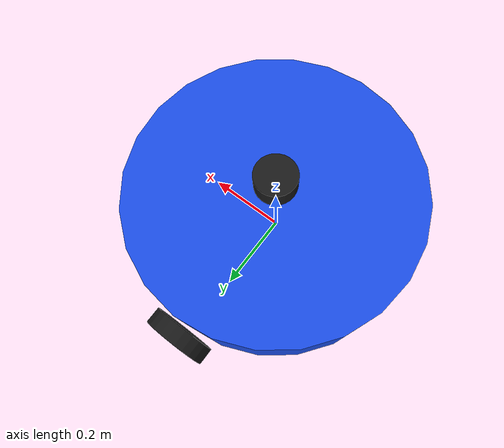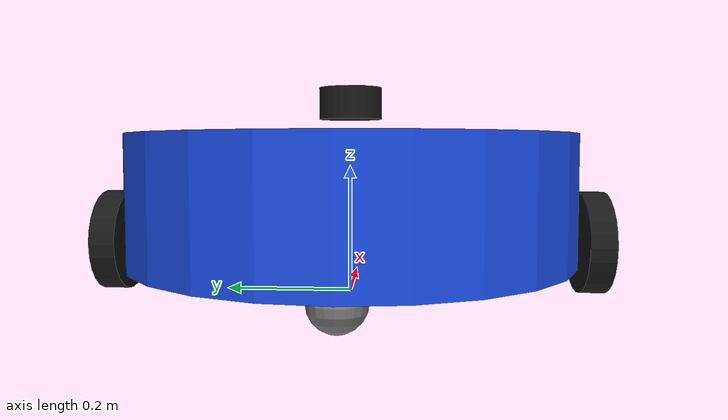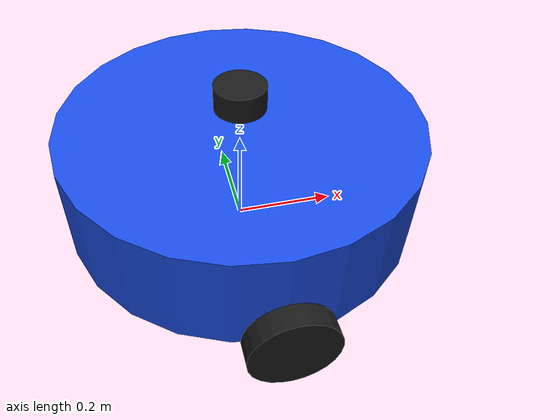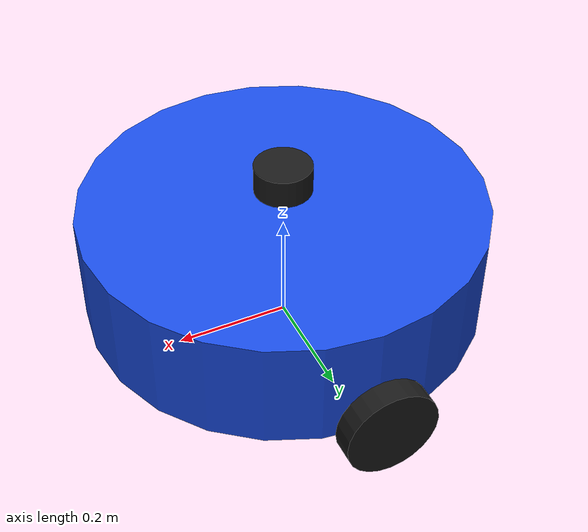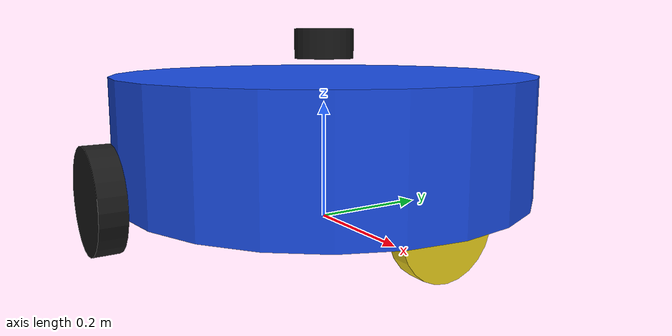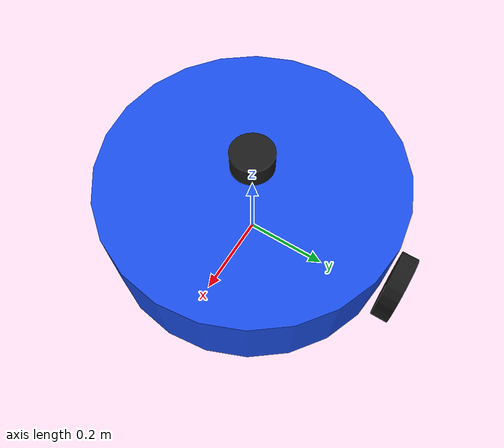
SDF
<?xml version="1.0" ?>
<sdf version="1.6">
  <model name="cleaner_robot">
    <static>false</static>

    <!-- BASE BODY - blue cylinder -->
    <link name="base_link">
      <pose>0 0 0.15 0 0 0</pose>
      <inertial>
        <mass>5.0</mass>
        <inertia>
          <ixx>0.1</ixx><ixy>0</ixy><ixz>0</ixz>
          <iyy>0.1</iyy><iyz>0</iyz><izz>0.18</izz>
        </inertia>
      </inertial>
      <collision name="collision">
        <geometry>
          <cylinder><radius>0.35</radius><length>0.2</length></cylinder>
        </geometry>
      </collision>
      <visual name="visual_body">
        <geometry>
          <cylinder><radius>0.35</radius><length>0.2</length></cylinder>
        </geometry>
        <material><ambient>0.1 0.3 0.9 1</ambient><diffuse>0.1 0.3 0.9 1</diffuse></material>
      </visual>
      <!-- Cleaning brush on front (yellow disc) -->
      <visual name="visual_brush">
        <pose>0.3 0 -0.09 0 1.5708 0</pose>
        <geometry>
          <cylinder><radius>0.08</radius><length>0.03</length></cylinder>
        </geometry>
        <material><ambient>0.9 0.8 0.1 1</ambient></material>
      </visual>
      <!-- LiDAR cylinder on top -->
      <visual name="visual_lidar">
        <pose>0 0 0.15 0 0 0</pose>
        <geometry>
          <cylinder><radius>0.05</radius><length>0.05</length></cylinder>
        </geometry>
        <material><ambient>0.1 0.1 0.1 1</ambient></material>
      </visual>
    </link>

    <!-- LEFT WHEEL -->
    <link name="left_wheel">
      <pose>0 0.38 0.08 -1.5708 0 0</pose>
      <inertial>
        <mass>0.5</mass>
        <inertia><ixx>0.005</ixx><ixy>0</ixy><ixz>0</ixz><iyy>0.005</iyy><iyz>0</iyz><izz>0.005</izz></inertia>
      </inertial>
      <collision name="collision">
        <geometry><cylinder><radius>0.08</radius><length>0.04</length></cylinder></geometry>
        <surface><friction><ode><mu>1.0</mu><mu2>1.0</mu2></ode></friction></surface>
      </collision>
      <visual name="visual">
        <geometry><cylinder><radius>0.08</radius><length>0.04</length></cylinder></geometry>
        <material><ambient>0.1 0.1 0.1 1</ambient></material>
      </visual>
    </link>
    <joint name="left_wheel_joint" type="revolute">
      <parent>base_link</parent><child>left_wheel</child>
      <axis><xyz>0 0 1</xyz><limit><lower>-1e+16</lower><upper>1e+16</upper></limit></axis>
    </joint>

    <!-- RIGHT WHEEL -->
    <link name="right_wheel">
      <pose>0 -0.38 0.08 -1.5708 0 0</pose>
      <inertial>
        <mass>0.5</mass>
        <inertia><ixx>0.005</ixx><ixy>0</ixy><ixz>0</ixz><iyy>0.005</iyy><iyz>0</iyz><izz>0.005</izz></inertia>
      </inertial>
      <collision name="collision">
        <geometry><cylinder><radius>0.08</radius><length>0.04</length></cylinder></geometry>
        <surface><friction><ode><mu>1.0</mu><mu2>1.0</mu2></ode></friction></surface>
      </collision>
      <visual name="visual">
        <geometry><cylinder><radius>0.08</radius><length>0.04</length></cylinder></geometry>
        <material><ambient>0.1 0.1 0.1 1</ambient></material>
      </visual>
    </link>
    <joint name="right_wheel_joint" type="revolute">
      <parent>base_link</parent><child>right_wheel</child>
      <axis><xyz>0 0 1</xyz><limit><lower>-1e+16</lower><upper>1e+16</upper></limit></axis>
    </joint>

    <!-- CASTER WHEEL (back) -->
    <link name="caster">
      <pose>-0.28 0 0.04 0 0 0</pose>
      <inertial><mass>0.1</mass><inertia><ixx>0.001</ixx><ixy>0</ixy><ixz>0</ixz><iyy>0.001</iyy><iyz>0</iyz><izz>0.001</izz></inertia></inertial>
      <collision name="collision">
        <geometry><sphere><radius>0.04</radius></sphere></geometry>
        <surface><friction><ode><mu>0.0</mu><mu2>0.0</mu2></ode></friction></surface>
      </collision>
      <visual name="visual">
        <geometry><sphere><radius>0.04</radius></sphere></geometry>
        <material><ambient>0.5 0.5 0.5 1</ambient></material>
      </visual>
    </link>
    <joint name="caster_joint" type="fixed">
      <parent>base_link</parent><child>caster</child>
    </joint>

    <!-- LIDAR SENSOR -->
    <link name="lidar_link">
      <pose>0 0 0.32 0 0 0</pose>
      <inertial><mass>0.05</mass><inertia><ixx>0.0001</ixx><ixy>0</ixy><ixz>0</ixz><iyy>0.0001</iyy><iyz>0</iyz><izz>0.0001</izz></inertia></inertial>
      <sensor name="lidar" type="ray">
        <always_on>true</always_on>
        <visualize>true</visualize>
        <update_rate>10</update_rate>
        <ray>
          <scan>
            <horizontal>
              <samples>360</samples><resolution>1</resolution>
              <min_angle>-3.14159</min_angle><max_angle>3.14159</max_angle>
            </horizontal>
          </scan>
          <range><min>0.15</min><max>8.0</max><resolution>0.01</resolution></range>
        </ray>
        <plugin name="cleaner_lidar_plugin" filename="libgazebo_ros_ray_sensor.so">
          <ros><namespace>/cleaner</namespace><remapping>~/out:=scan</remapping></ros>
          <output_type>sensor_msgs/LaserScan</output_type>
          <frame_name>cleaner/lidar_link</frame_name>
        </plugin>
      </sensor>
    </link>
    <joint name="lidar_joint" type="fixed">
      <parent>base_link</parent><child>lidar_link</child>
    </joint>

    <!-- DIFF DRIVE PLUGIN -->
    <plugin name="cleaner_diff_drive" filename="libgazebo_ros_diff_drive.so">
      <ros>
        <namespace>/cleaner</namespace>
        <remapping>cmd_vel:=cmd_vel</remapping>
        <remapping>odom:=odom</remapping>
      </ros>
      <left_joint>left_wheel_joint</left_joint>
      <right_joint>right_wheel_joint</right_joint>
      <wheel_separation>0.76</wheel_separation>
      <wheel_diameter>0.16</wheel_diameter>
      <max_wheel_torque>20</max_wheel_torque>
      <max_wheel_acceleration>1.0</max_wheel_acceleration>
      <publish_odom>true</publish_odom>
      <publish_odom_tf>true</publish_odom_tf>
      <publish_wheel_tf>true</publish_wheel_tf>
      <odometry_frame>cleaner/odom</odometry_frame>
      <robot_base_frame>cleaner/base_link</robot_base_frame>
    </plugin>

  </model>
</sdf>
